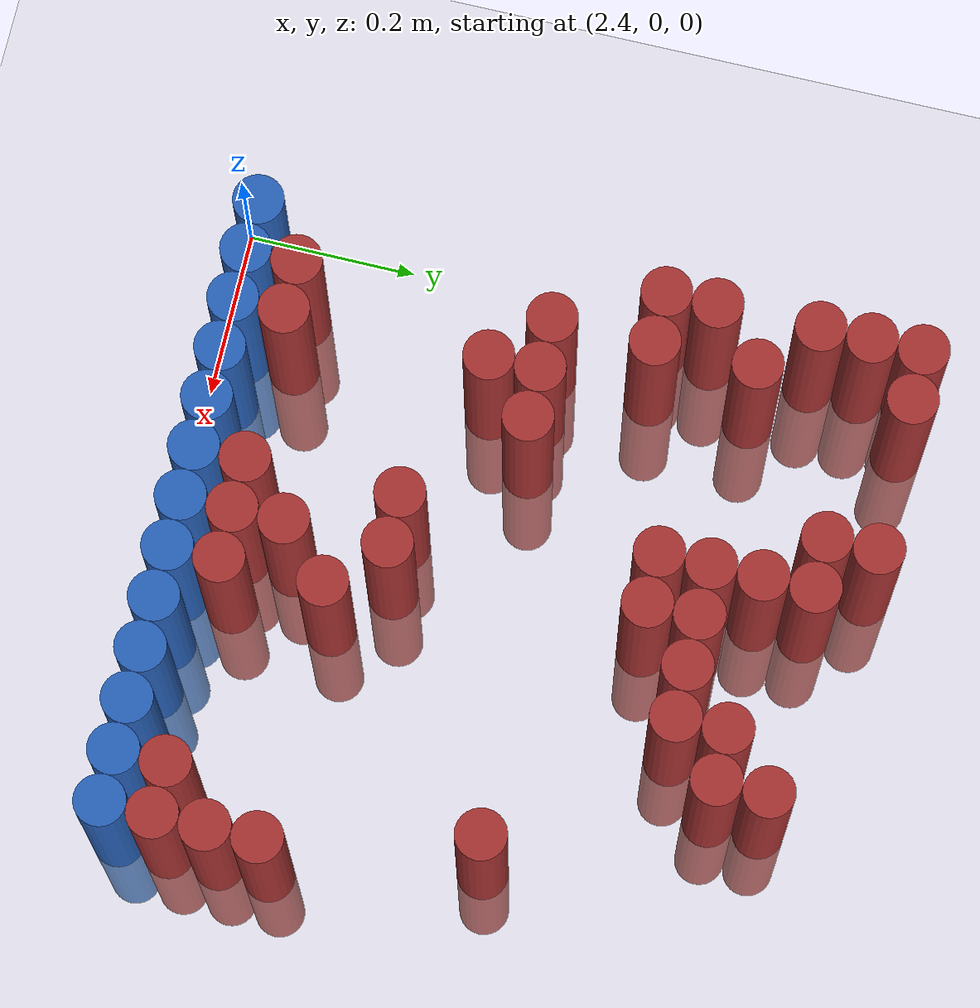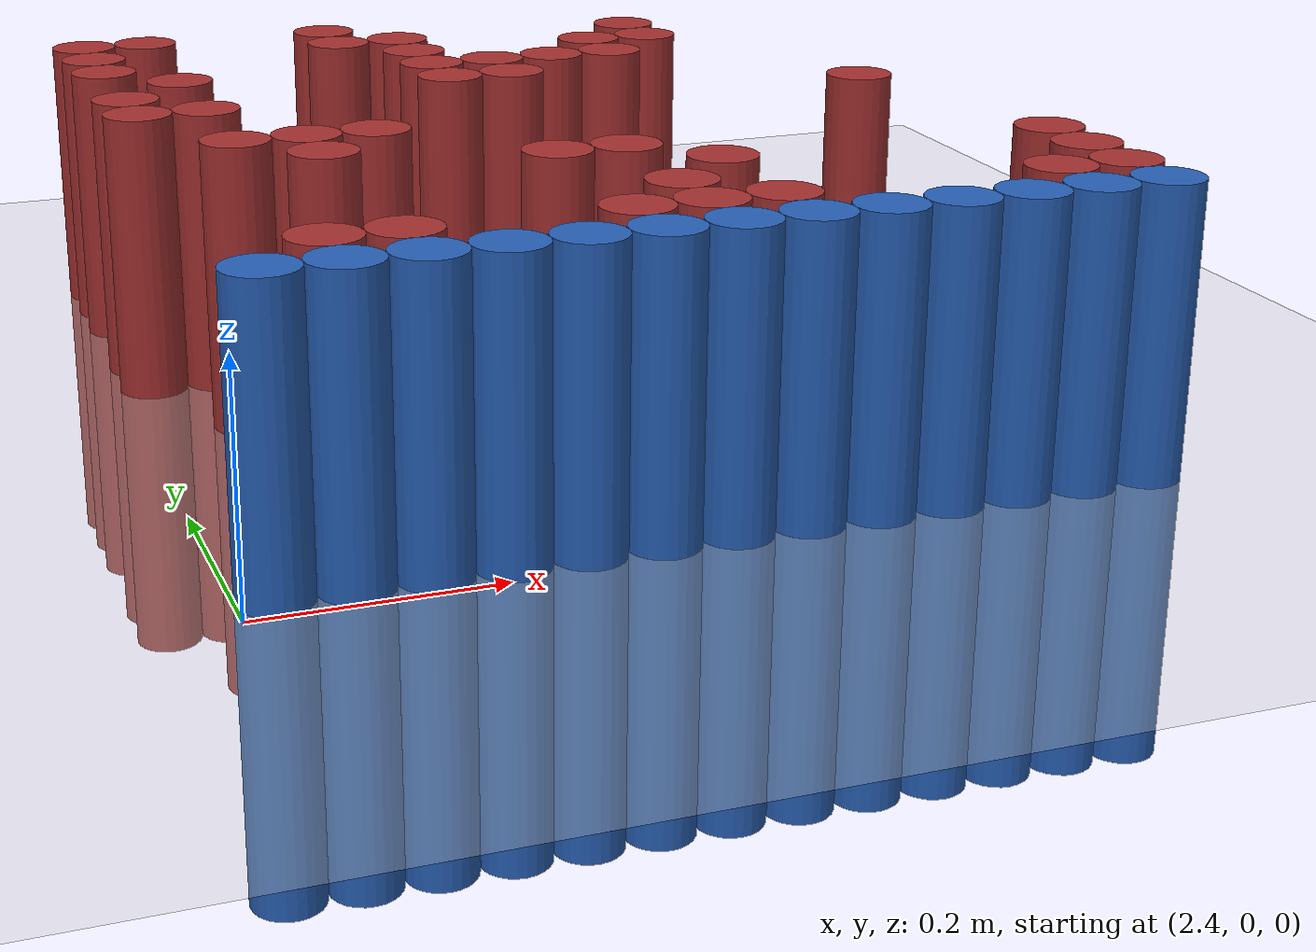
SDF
<sdf version="1.6">
 <world name="default">
  <model name="ground_plane">
   <static>1</static>
   <link name="link">
    <collision name="collision">
     <geometry><plane><normal>0 0 1</normal><size>100 100</size></plane></geometry>
     <surface><friction><ode><mu>100</mu><mu2>50</mu2></ode></friction></surface>
    </collision>
    <visual name="visual">
     <cast_shadows>0</cast_shadows>
     <geometry><plane><normal>0 0 1</normal><size>100 100</size></plane></geometry>
     <material>
      <script><uri>file://media/materials/scripts/gazebo.material</uri><name>Gazebo/Grey</name></script>
     </material>
    </visual>
   </link>
  </model>
  <model name="unit_cylinder_221">
   <static>1</static>
   <pose>2.430000 0.810000 0.000000 0.000000 0.000000 0.000000</pose>
   <link name="link">
    <inertial>
     <mass>1</mass>
     <inertia><ixx>0.145833</ixx><ixy>0</ixy><ixz>0</ixz><iyy>0.145833</iyy><iyz>0</iyz><izz>0.125</izz></inertia>
    </inertial>
    <collision name="collision">
     <geometry><cylinder><radius>0.030000</radius><length>0.5</length></cylinder></geometry>
    </collision>
    <visual name="visual">
     <geometry><cylinder><radius>0.030000</radius><length>0.5</length></cylinder></geometry>
     <material>
      <ambient>0.648000 0.192000 0.192000 1</ambient>
      <diffuse>0.648000 0.192000 0.192000 1</diffuse>
     </material>
     <material>
      <script><name>Gazebo/Grey</name><uri>file://media/materials/scripts/gazebo.material</uri></script>
     </material>
    </visual>
   </link>
  </model>
  <model name="unit_cylinder_222">
   <static>1</static>
   <pose>2.490000 0.810000 0.000000 0.000000 0.000000 0.000000</pose>
   <link name="link">
    <inertial>
     <mass>1</mass>
     <inertia><ixx>0.145833</ixx><ixy>0</ixy><ixz>0</ixz><iyy>0.145833</iyy><iyz>0</iyz><izz>0.125</izz></inertia>
    </inertial>
    <collision name="collision">
     <geometry><cylinder><radius>0.030000</radius><length>0.5</length></cylinder></geometry>
    </collision>
    <visual name="visual">
     <geometry><cylinder><radius>0.030000</radius><length>0.5</length></cylinder></geometry>
     <material>
      <ambient>0.648000 0.192000 0.192000 1</ambient>
      <diffuse>0.648000 0.192000 0.192000 1</diffuse>
     </material>
     <material>
      <script><name>Gazebo/Grey</name><uri>file://media/materials/scripts/gazebo.material</uri></script>
     </material>
    </visual>
   </link>
  </model>
  <model name="unit_cylinder_223">
   <static>1</static>
   <pose>2.670000 0.810000 0.000000 0.000000 0.000000 0.000000</pose>
   <link name="link">
    <inertial>
     <mass>1</mass>
     <inertia><ixx>0.145833</ixx><ixy>0</ixy><ixz>0</ixz><iyy>0.145833</iyy><iyz>0</iyz><izz>0.125</izz></inertia>
    </inertial>
    <collision name="collision">
     <geometry><cylinder><radius>0.030000</radius><length>0.5</length></cylinder></geometry>
    </collision>
    <visual name="visual">
     <geometry><cylinder><radius>0.030000</radius><length>0.5</length></cylinder></geometry>
     <material>
      <ambient>0.648000 0.192000 0.192000 1</ambient>
      <diffuse>0.648000 0.192000 0.192000 1</diffuse>
     </material>
     <material>
      <script><name>Gazebo/Grey</name><uri>file://media/materials/scripts/gazebo.material</uri></script>
     </material>
    </visual>
   </link>
  </model>
  <model name="unit_cylinder_233">
   <static>1</static>
   <pose>2.430000 0.750000 0.000000 0.000000 0.000000 0.000000</pose>
   <link name="link">
    <inertial>
     <mass>1</mass>
     <inertia><ixx>0.145833</ixx><ixy>0</ixy><ixz>0</ixz><iyy>0.145833</iyy><iyz>0</iyz><izz>0.125</izz></inertia>
    </inertial>
    <collision name="collision">
     <geometry><cylinder><radius>0.030000</radius><length>0.5</length></cylinder></geometry>
    </collision>
    <visual name="visual">
     <geometry><cylinder><radius>0.030000</radius><length>0.5</length></cylinder></geometry>
     <material>
      <ambient>0.648000 0.192000 0.192000 1</ambient>
      <diffuse>0.648000 0.192000 0.192000 1</diffuse>
     </material>
     <material>
      <script><name>Gazebo/Grey</name><uri>file://media/materials/scripts/gazebo.material</uri></script>
     </material>
    </visual>
   </link>
  </model>
  <model name="unit_cylinder_234">
   <static>1</static>
   <pose>2.670000 0.750000 0.000000 0.000000 0.000000 0.000000</pose>
   <link name="link">
    <inertial>
     <mass>1</mass>
     <inertia><ixx>0.145833</ixx><ixy>0</ixy><ixz>0</ixz><iyy>0.145833</iyy><iyz>0</iyz><izz>0.125</izz></inertia>
    </inertial>
    <collision name="collision">
     <geometry><cylinder><radius>0.030000</radius><length>0.5</length></cylinder></geometry>
    </collision>
    <visual name="visual">
     <geometry><cylinder><radius>0.030000</radius><length>0.5</length></cylinder></geometry>
     <material>
      <ambient>0.648000 0.192000 0.192000 1</ambient>
      <diffuse>0.648000 0.192000 0.192000 1</diffuse>
     </material>
     <material>
      <script><name>Gazebo/Grey</name><uri>file://media/materials/scripts/gazebo.material</uri></script>
     </material>
    </visual>
   </link>
  </model>
  <model name="unit_cylinder_235">
   <static>1</static>
   <pose>2.730000 0.750000 0.000000 0.000000 0.000000 0.000000</pose>
   <link name="link">
    <inertial>
     <mass>1</mass>
     <inertia><ixx>0.145833</ixx><ixy>0</ixy><ixz>0</ixz><iyy>0.145833</iyy><iyz>0</iyz><izz>0.125</izz></inertia>
    </inertial>
    <collision name="collision">
     <geometry><cylinder><radius>0.030000</radius><length>0.5</length></cylinder></geometry>
    </collision>
    <visual name="visual">
     <geometry><cylinder><radius>0.030000</radius><length>0.5</length></cylinder></geometry>
     <material>
      <ambient>0.648000 0.192000 0.192000 1</ambient>
      <diffuse>0.648000 0.192000 0.192000 1</diffuse>
     </material>
     <material>
      <script><name>Gazebo/Grey</name><uri>file://media/materials/scripts/gazebo.material</uri></script>
     </material>
    </visual>
   </link>
  </model>
  <model name="unit_cylinder_236">
   <static>1</static>
   <pose>2.970000 0.750000 0.000000 0.000000 0.000000 0.000000</pose>
   <link name="link">
    <inertial>
     <mass>1</mass>
     <inertia><ixx>0.145833</ixx><ixy>0</ixy><ixz>0</ixz><iyy>0.145833</iyy><iyz>0</iyz><izz>0.125</izz></inertia>
    </inertial>
    <collision name="collision">
     <geometry><cylinder><radius>0.030000</radius><length>0.5</length></cylinder></geometry>
    </collision>
    <visual name="visual">
     <geometry><cylinder><radius>0.030000</radius><length>0.5</length></cylinder></geometry>
     <material>
      <ambient>0.648000 0.192000 0.192000 1</ambient>
      <diffuse>0.648000 0.192000 0.192000 1</diffuse>
     </material>
     <material>
      <script><name>Gazebo/Grey</name><uri>file://media/materials/scripts/gazebo.material</uri></script>
     </material>
    </visual>
   </link>
  </model>
  <model name="unit_cylinder_247">
   <static>1</static>
   <pose>2.430000 0.690000 0.000000 0.000000 0.000000 0.000000</pose>
   <link name="link">
    <inertial>
     <mass>1</mass>
     <inertia><ixx>0.145833</ixx><ixy>0</ixy><ixz>0</ixz><iyy>0.145833</iyy><iyz>0</iyz><izz>0.125</izz></inertia>
    </inertial>
    <collision name="collision">
     <geometry><cylinder><radius>0.030000</radius><length>0.5</length></cylinder></geometry>
    </collision>
    <visual name="visual">
     <geometry><cylinder><radius>0.030000</radius><length>0.5</length></cylinder></geometry>
     <material>
      <ambient>0.648000 0.192000 0.192000 1</ambient>
      <diffuse>0.648000 0.192000 0.192000 1</diffuse>
     </material>
     <material>
      <script><name>Gazebo/Grey</name><uri>file://media/materials/scripts/gazebo.material</uri></script>
     </material>
    </visual>
   </link>
  </model>
  <model name="unit_cylinder_248">
   <static>1</static>
   <pose>2.730000 0.690000 0.000000 0.000000 0.000000 0.000000</pose>
   <link name="link">
    <inertial>
     <mass>1</mass>
     <inertia><ixx>0.145833</ixx><ixy>0</ixy><ixz>0</ixz><iyy>0.145833</iyy><iyz>0</iyz><izz>0.125</izz></inertia>
    </inertial>
    <collision name="collision">
     <geometry><cylinder><radius>0.030000</radius><length>0.5</length></cylinder></geometry>
    </collision>
    <visual name="visual">
     <geometry><cylinder><radius>0.030000</radius><length>0.5</length></cylinder></geometry>
     <material>
      <ambient>0.648000 0.192000 0.192000 1</ambient>
      <diffuse>0.648000 0.192000 0.192000 1</diffuse>
     </material>
     <material>
      <script><name>Gazebo/Grey</name><uri>file://media/materials/scripts/gazebo.material</uri></script>
     </material>
    </visual>
   </link>
  </model>
  <model name="unit_cylinder_249">
   <static>1</static>
   <pose>2.910000 0.690000 0.000000 0.000000 0.000000 0.000000</pose>
   <link name="link">
    <inertial>
     <mass>1</mass>
     <inertia><ixx>0.145833</ixx><ixy>0</ixy><ixz>0</ixz><iyy>0.145833</iyy><iyz>0</iyz><izz>0.125</izz></inertia>
    </inertial>
    <collision name="collision">
     <geometry><cylinder><radius>0.030000</radius><length>0.5</length></cylinder></geometry>
    </collision>
    <visual name="visual">
     <geometry><cylinder><radius>0.030000</radius><length>0.5</length></cylinder></geometry>
     <material>
      <ambient>0.648000 0.192000 0.192000 1</ambient>
      <diffuse>0.648000 0.192000 0.192000 1</diffuse>
     </material>
     <material>
      <script><name>Gazebo/Grey</name><uri>file://media/materials/scripts/gazebo.material</uri></script>
     </material>
    </visual>
   </link>
  </model>
  <model name="unit_cylinder_250">
   <static>1</static>
   <pose>2.970000 0.690000 0.000000 0.000000 0.000000 0.000000</pose>
   <link name="link">
    <inertial>
     <mass>1</mass>
     <inertia><ixx>0.145833</ixx><ixy>0</ixy><ixz>0</ixz><iyy>0.145833</iyy><iyz>0</iyz><izz>0.125</izz></inertia>
    </inertial>
    <collision name="collision">
     <geometry><cylinder><radius>0.030000</radius><length>0.5</length></cylinder></geometry>
    </collision>
    <visual name="visual">
     <geometry><cylinder><radius>0.030000</radius><length>0.5</length></cylinder></geometry>
     <material>
      <ambient>0.648000 0.192000 0.192000 1</ambient>
      <diffuse>0.648000 0.192000 0.192000 1</diffuse>
     </material>
     <material>
      <script><name>Gazebo/Grey</name><uri>file://media/materials/scripts/gazebo.material</uri></script>
     </material>
    </visual>
   </link>
  </model>
  <model name="unit_cylinder_256">
   <static>1</static>
   <pose>2.490000 0.630000 0.000000 0.000000 0.000000 0.000000</pose>
   <link name="link">
    <inertial>
     <mass>1</mass>
     <inertia><ixx>0.145833</ixx><ixy>0</ixy><ixz>0</ixz><iyy>0.145833</iyy><iyz>0</iyz><izz>0.125</izz></inertia>
    </inertial>
    <collision name="collision">
     <geometry><cylinder><radius>0.030000</radius><length>0.5</length></cylinder></geometry>
    </collision>
    <visual name="visual">
     <geometry><cylinder><radius>0.030000</radius><length>0.5</length></cylinder></geometry>
     <material>
      <ambient>0.648000 0.192000 0.192000 1</ambient>
      <diffuse>0.648000 0.192000 0.192000 1</diffuse>
     </material>
     <material>
      <script><name>Gazebo/Grey</name><uri>file://media/materials/scripts/gazebo.material</uri></script>
     </material>
    </visual>
   </link>
  </model>
  <model name="unit_cylinder_257">
   <static>1</static>
   <pose>2.730000 0.630000 0.000000 0.000000 0.000000 0.000000</pose>
   <link name="link">
    <inertial>
     <mass>1</mass>
     <inertia><ixx>0.145833</ixx><ixy>0</ixy><ixz>0</ixz><iyy>0.145833</iyy><iyz>0</iyz><izz>0.125</izz></inertia>
    </inertial>
    <collision name="collision">
     <geometry><cylinder><radius>0.030000</radius><length>0.5</length></cylinder></geometry>
    </collision>
    <visual name="visual">
     <geometry><cylinder><radius>0.030000</radius><length>0.5</length></cylinder></geometry>
     <material>
      <ambient>0.648000 0.192000 0.192000 1</ambient>
      <diffuse>0.648000 0.192000 0.192000 1</diffuse>
     </material>
     <material>
      <script><name>Gazebo/Grey</name><uri>file://media/materials/scripts/gazebo.material</uri></script>
     </material>
    </visual>
   </link>
  </model>
  <model name="unit_cylinder_258">
   <static>1</static>
   <pose>2.790000 0.630000 0.000000 0.000000 0.000000 0.000000</pose>
   <link name="link">
    <inertial>
     <mass>1</mass>
     <inertia><ixx>0.145833</ixx><ixy>0</ixy><ixz>0</ixz><iyy>0.145833</iyy><iyz>0</iyz><izz>0.125</izz></inertia>
    </inertial>
    <collision name="collision">
     <geometry><cylinder><radius>0.030000</radius><length>0.5</length></cylinder></geometry>
    </collision>
    <visual name="visual">
     <geometry><cylinder><radius>0.030000</radius><length>0.5</length></cylinder></geometry>
     <material>
      <ambient>0.648000 0.192000 0.192000 1</ambient>
      <diffuse>0.648000 0.192000 0.192000 1</diffuse>
     </material>
     <material>
      <script><name>Gazebo/Grey</name><uri>file://media/materials/scripts/gazebo.material</uri></script>
     </material>
    </visual>
   </link>
  </model>
  <model name="unit_cylinder_259">
   <static>1</static>
   <pose>2.850000 0.630000 0.000000 0.000000 0.000000 0.000000</pose>
   <link name="link">
    <inertial>
     <mass>1</mass>
     <inertia><ixx>0.145833</ixx><ixy>0</ixy><ixz>0</ixz><iyy>0.145833</iyy><iyz>0</iyz><izz>0.125</izz></inertia>
    </inertial>
    <collision name="collision">
     <geometry><cylinder><radius>0.030000</radius><length>0.5</length></cylinder></geometry>
    </collision>
    <visual name="visual">
     <geometry><cylinder><radius>0.030000</radius><length>0.5</length></cylinder></geometry>
     <material>
      <ambient>0.648000 0.192000 0.192000 1</ambient>
      <diffuse>0.648000 0.192000 0.192000 1</diffuse>
     </material>
     <material>
      <script><name>Gazebo/Grey</name><uri>file://media/materials/scripts/gazebo.material</uri></script>
     </material>
    </visual>
   </link>
  </model>
  <model name="unit_cylinder_260">
   <static>1</static>
   <pose>2.910000 0.630000 0.000000 0.000000 0.000000 0.000000</pose>
   <link name="link">
    <inertial>
     <mass>1</mass>
     <inertia><ixx>0.145833</ixx><ixy>0</ixy><ixz>0</ixz><iyy>0.145833</iyy><iyz>0</iyz><izz>0.125</izz></inertia>
    </inertial>
    <collision name="collision">
     <geometry><cylinder><radius>0.030000</radius><length>0.5</length></cylinder></geometry>
    </collision>
    <visual name="visual">
     <geometry><cylinder><radius>0.030000</radius><length>0.5</length></cylinder></geometry>
     <material>
      <ambient>0.648000 0.192000 0.192000 1</ambient>
      <diffuse>0.648000 0.192000 0.192000 1</diffuse>
     </material>
     <material>
      <script><name>Gazebo/Grey</name><uri>file://media/materials/scripts/gazebo.material</uri></script>
     </material>
    </visual>
   </link>
  </model>
  <model name="unit_cylinder_267">
   <static>1</static>
   <pose>2.430000 0.570000 0.000000 0.000000 0.000000 0.000000</pose>
   <link name="link">
    <inertial>
     <mass>1</mass>
     <inertia><ixx>0.145833</ixx><ixy>0</ixy><ixz>0</ixz><iyy>0.145833</iyy><iyz>0</iyz><izz>0.125</izz></inertia>
    </inertial>
    <collision name="collision">
     <geometry><cylinder><radius>0.030000</radius><length>0.5</length></cylinder></geometry>
    </collision>
    <visual name="visual">
     <geometry><cylinder><radius>0.030000</radius><length>0.5</length></cylinder></geometry>
     <material>
      <ambient>0.648000 0.192000 0.192000 1</ambient>
      <diffuse>0.648000 0.192000 0.192000 1</diffuse>
     </material>
     <material>
      <script><name>Gazebo/Grey</name><uri>file://media/materials/scripts/gazebo.material</uri></script>
     </material>
    </visual>
   </link>
  </model>
  <model name="unit_cylinder_268">
   <static>1</static>
   <pose>2.730000 0.570000 0.000000 0.000000 0.000000 0.000000</pose>
   <link name="link">
    <inertial>
     <mass>1</mass>
     <inertia><ixx>0.145833</ixx><ixy>0</ixy><ixz>0</ixz><iyy>0.145833</iyy><iyz>0</iyz><izz>0.125</izz></inertia>
    </inertial>
    <collision name="collision">
     <geometry><cylinder><radius>0.030000</radius><length>0.5</length></cylinder></geometry>
    </collision>
    <visual name="visual">
     <geometry><cylinder><radius>0.030000</radius><length>0.5</length></cylinder></geometry>
     <material>
      <ambient>0.648000 0.192000 0.192000 1</ambient>
      <diffuse>0.648000 0.192000 0.192000 1</diffuse>
     </material>
     <material>
      <script><name>Gazebo/Grey</name><uri>file://media/materials/scripts/gazebo.material</uri></script>
     </material>
    </visual>
   </link>
  </model>
  <model name="unit_cylinder_269">
   <static>1</static>
   <pose>2.790000 0.570000 0.000000 0.000000 0.000000 0.000000</pose>
   <link name="link">
    <inertial>
     <mass>1</mass>
     <inertia><ixx>0.145833</ixx><ixy>0</ixy><ixz>0</ixz><iyy>0.145833</iyy><iyz>0</iyz><izz>0.125</izz></inertia>
    </inertial>
    <collision name="collision">
     <geometry><cylinder><radius>0.030000</radius><length>0.5</length></cylinder></geometry>
    </collision>
    <visual name="visual">
     <geometry><cylinder><radius>0.030000</radius><length>0.5</length></cylinder></geometry>
     <material>
      <ambient>0.648000 0.192000 0.192000 1</ambient>
      <diffuse>0.648000 0.192000 0.192000 1</diffuse>
     </material>
     <material>
      <script><name>Gazebo/Grey</name><uri>file://media/materials/scripts/gazebo.material</uri></script>
     </material>
    </visual>
   </link>
  </model>
  <model name="unit_cylinder_276">
   <static>1</static>
   <pose>2.430000 0.510000 0.000000 0.000000 0.000000 0.000000</pose>
   <link name="link">
    <inertial>
     <mass>1</mass>
     <inertia><ixx>0.145833</ixx><ixy>0</ixy><ixz>0</ixz><iyy>0.145833</iyy><iyz>0</iyz><izz>0.125</izz></inertia>
    </inertial>
    <collision name="collision">
     <geometry><cylinder><radius>0.030000</radius><length>0.5</length></cylinder></geometry>
    </collision>
    <visual name="visual">
     <geometry><cylinder><radius>0.030000</radius><length>0.5</length></cylinder></geometry>
     <material>
      <ambient>0.648000 0.192000 0.192000 1</ambient>
      <diffuse>0.648000 0.192000 0.192000 1</diffuse>
     </material>
     <material>
      <script><name>Gazebo/Grey</name><uri>file://media/materials/scripts/gazebo.material</uri></script>
     </material>
    </visual>
   </link>
  </model>
  <model name="unit_cylinder_277">
   <static>1</static>
   <pose>2.490000 0.510000 0.000000 0.000000 0.000000 0.000000</pose>
   <link name="link">
    <inertial>
     <mass>1</mass>
     <inertia><ixx>0.145833</ixx><ixy>0</ixy><ixz>0</ixz><iyy>0.145833</iyy><iyz>0</iyz><izz>0.125</izz></inertia>
    </inertial>
    <collision name="collision">
     <geometry><cylinder><radius>0.030000</radius><length>0.5</length></cylinder></geometry>
    </collision>
    <visual name="visual">
     <geometry><cylinder><radius>0.030000</radius><length>0.5</length></cylinder></geometry>
     <material>
      <ambient>0.648000 0.192000 0.192000 1</ambient>
      <diffuse>0.648000 0.192000 0.192000 1</diffuse>
     </material>
     <material>
      <script><name>Gazebo/Grey</name><uri>file://media/materials/scripts/gazebo.material</uri></script>
     </material>
    </visual>
   </link>
  </model>
  <model name="unit_cylinder_283">
   <static>1</static>
   <pose>3.090000 0.450000 0.000000 0.000000 0.000000 0.000000</pose>
   <link name="link">
    <inertial>
     <mass>1</mass>
     <inertia><ixx>0.145833</ixx><ixy>0</ixy><ixz>0</ixz><iyy>0.145833</iyy><iyz>0</iyz><izz>0.125</izz></inertia>
    </inertial>
    <collision name="collision">
     <geometry><cylinder><radius>0.030000</radius><length>0.5</length></cylinder></geometry>
    </collision>
    <visual name="visual">
     <geometry><cylinder><radius>0.030000</radius><length>0.5</length></cylinder></geometry>
     <material>
      <ambient>0.648000 0.192000 0.192000 1</ambient>
      <diffuse>0.648000 0.192000 0.192000 1</diffuse>
     </material>
     <material>
      <script><name>Gazebo/Grey</name><uri>file://media/materials/scripts/gazebo.material</uri></script>
     </material>
    </visual>
   </link>
  </model>
  <model name="unit_cylinder_288">
   <static>1</static>
   <pose>2.490000 0.390000 0.000000 0.000000 0.000000 0.000000</pose>
   <link name="link">
    <inertial>
     <mass>1</mass>
     <inertia><ixx>0.145833</ixx><ixy>0</ixy><ixz>0</ixz><iyy>0.145833</iyy><iyz>0</iyz><izz>0.125</izz></inertia>
    </inertial>
    <collision name="collision">
     <geometry><cylinder><radius>0.030000</radius><length>0.5</length></cylinder></geometry>
    </collision>
    <visual name="visual">
     <geometry><cylinder><radius>0.030000</radius><length>0.5</length></cylinder></geometry>
     <material>
      <ambient>0.648000 0.192000 0.192000 1</ambient>
      <diffuse>0.648000 0.192000 0.192000 1</diffuse>
     </material>
     <material>
      <script><name>Gazebo/Grey</name><uri>file://media/materials/scripts/gazebo.material</uri></script>
     </material>
    </visual>
   </link>
  </model>
  <model name="unit_cylinder_289">
   <static>1</static>
   <pose>2.550000 0.390000 0.000000 0.000000 0.000000 0.000000</pose>
   <link name="link">
    <inertial>
     <mass>1</mass>
     <inertia><ixx>0.145833</ixx><ixy>0</ixy><ixz>0</ixz><iyy>0.145833</iyy><iyz>0</iyz><izz>0.125</izz></inertia>
    </inertial>
    <collision name="collision">
     <geometry><cylinder><radius>0.030000</radius><length>0.5</length></cylinder></geometry>
    </collision>
    <visual name="visual">
     <geometry><cylinder><radius>0.030000</radius><length>0.5</length></cylinder></geometry>
     <material>
      <ambient>0.648000 0.192000 0.192000 1</ambient>
      <diffuse>0.648000 0.192000 0.192000 1</diffuse>
     </material>
     <material>
      <script><name>Gazebo/Grey</name><uri>file://media/materials/scripts/gazebo.material</uri></script>
     </material>
    </visual>
   </link>
  </model>
  <model name="unit_cylinder_290">
   <static>1</static>
   <pose>2.610000 0.390000 0.000000 0.000000 0.000000 0.000000</pose>
   <link name="link">
    <inertial>
     <mass>1</mass>
     <inertia><ixx>0.145833</ixx><ixy>0</ixy><ixz>0</ixz><iyy>0.145833</iyy><iyz>0</iyz><izz>0.125</izz></inertia>
    </inertial>
    <collision name="collision">
     <geometry><cylinder><radius>0.030000</radius><length>0.5</length></cylinder></geometry>
    </collision>
    <visual name="visual">
     <geometry><cylinder><radius>0.030000</radius><length>0.5</length></cylinder></geometry>
     <material>
      <ambient>0.648000 0.192000 0.192000 1</ambient>
      <diffuse>0.648000 0.192000 0.192000 1</diffuse>
     </material>
     <material>
      <script><name>Gazebo/Grey</name><uri>file://media/materials/scripts/gazebo.material</uri></script>
     </material>
    </visual>
   </link>
  </model>
  <model name="unit_cylinder_294">
   <static>1</static>
   <pose>2.550000 0.330000 0.000000 0.000000 0.000000 0.000000</pose>
   <link name="link">
    <inertial>
     <mass>1</mass>
     <inertia><ixx>0.145833</ixx><ixy>0</ixy><ixz>0</ixz><iyy>0.145833</iyy><iyz>0</iyz><izz>0.125</izz></inertia>
    </inertial>
    <collision name="collision">
     <geometry><cylinder><radius>0.030000</radius><length>0.5</length></cylinder></geometry>
    </collision>
    <visual name="visual">
     <geometry><cylinder><radius>0.030000</radius><length>0.5</length></cylinder></geometry>
     <material>
      <ambient>0.648000 0.192000 0.192000 1</ambient>
      <diffuse>0.648000 0.192000 0.192000 1</diffuse>
     </material>
     <material>
      <script><name>Gazebo/Grey</name><uri>file://media/materials/scripts/gazebo.material</uri></script>
     </material>
    </visual>
   </link>
  </model>
  <model name="unit_cylinder_298">
   <static>1</static>
   <pose>2.730000 0.270000 0.000000 0.000000 0.000000 0.000000</pose>
   <link name="link">
    <inertial>
     <mass>1</mass>
     <inertia><ixx>0.145833</ixx><ixy>0</ixy><ixz>0</ixz><iyy>0.145833</iyy><iyz>0</iyz><izz>0.125</izz></inertia>
    </inertial>
    <collision name="collision">
     <geometry><cylinder><radius>0.030000</radius><length>0.5</length></cylinder></geometry>
    </collision>
    <visual name="visual">
     <geometry><cylinder><radius>0.030000</radius><length>0.5</length></cylinder></geometry>
     <material>
      <ambient>0.648000 0.192000 0.192000 1</ambient>
      <diffuse>0.648000 0.192000 0.192000 1</diffuse>
     </material>
     <material>
      <script><name>Gazebo/Grey</name><uri>file://media/materials/scripts/gazebo.material</uri></script>
     </material>
    </visual>
   </link>
  </model>
  <model name="unit_cylinder_299">
   <static>1</static>
   <pose>2.790000 0.270000 0.000000 0.000000 0.000000 0.000000</pose>
   <link name="link">
    <inertial>
     <mass>1</mass>
     <inertia><ixx>0.145833</ixx><ixy>0</ixy><ixz>0</ixz><iyy>0.145833</iyy><iyz>0</iyz><izz>0.125</izz></inertia>
    </inertial>
    <collision name="collision">
     <geometry><cylinder><radius>0.030000</radius><length>0.5</length></cylinder></geometry>
    </collision>
    <visual name="visual">
     <geometry><cylinder><radius>0.030000</radius><length>0.5</length></cylinder></geometry>
     <material>
      <ambient>0.648000 0.192000 0.192000 1</ambient>
      <diffuse>0.648000 0.192000 0.192000 1</diffuse>
     </material>
     <material>
      <script><name>Gazebo/Grey</name><uri>file://media/materials/scripts/gazebo.material</uri></script>
     </material>
    </visual>
   </link>
  </model>
  <model name="unit_cylinder_303">
   <static>1</static>
   <pose>2.850000 0.210000 0.000000 0.000000 0.000000 0.000000</pose>
   <link name="link">
    <inertial>
     <mass>1</mass>
     <inertia><ixx>0.145833</ixx><ixy>0</ixy><ixz>0</ixz><iyy>0.145833</iyy><iyz>0</iyz><izz>0.125</izz></inertia>
    </inertial>
    <collision name="collision">
     <geometry><cylinder><radius>0.030000</radius><length>0.5</length></cylinder></geometry>
    </collision>
    <visual name="visual">
     <geometry><cylinder><radius>0.030000</radius><length>0.5</length></cylinder></geometry>
     <material>
      <ambient>0.648000 0.192000 0.192000 1</ambient>
      <diffuse>0.648000 0.192000 0.192000 1</diffuse>
     </material>
     <material>
      <script><name>Gazebo/Grey</name><uri>file://media/materials/scripts/gazebo.material</uri></script>
     </material>
    </visual>
   </link>
  </model>
  <model name="unit_cylinder_304">
   <static>1</static>
   <pose>3.150000 0.210000 0.000000 0.000000 0.000000 0.000000</pose>
   <link name="link">
    <inertial>
     <mass>1</mass>
     <inertia><ixx>0.145833</ixx><ixy>0</ixy><ixz>0</ixz><iyy>0.145833</iyy><iyz>0</iyz><izz>0.125</izz></inertia>
    </inertial>
    <collision name="collision">
     <geometry><cylinder><radius>0.030000</radius><length>0.5</length></cylinder></geometry>
    </collision>
    <visual name="visual">
     <geometry><cylinder><radius>0.030000</radius><length>0.5</length></cylinder></geometry>
     <material>
      <ambient>0.648000 0.192000 0.192000 1</ambient>
      <diffuse>0.648000 0.192000 0.192000 1</diffuse>
     </material>
     <material>
      <script><name>Gazebo/Grey</name><uri>file://media/materials/scripts/gazebo.material</uri></script>
     </material>
    </visual>
   </link>
  </model>
  <model name="unit_cylinder_309">
   <static>1</static>
   <pose>2.790000 0.150000 0.000000 0.000000 0.000000 0.000000</pose>
   <link name="link">
    <inertial>
     <mass>1</mass>
     <inertia><ixx>0.145833</ixx><ixy>0</ixy><ixz>0</ixz><iyy>0.145833</iyy><iyz>0</iyz><izz>0.125</izz></inertia>
    </inertial>
    <collision name="collision">
     <geometry><cylinder><radius>0.030000</radius><length>0.5</length></cylinder></geometry>
    </collision>
    <visual name="visual">
     <geometry><cylinder><radius>0.030000</radius><length>0.5</length></cylinder></geometry>
     <material>
      <ambient>0.648000 0.192000 0.192000 1</ambient>
      <diffuse>0.648000 0.192000 0.192000 1</diffuse>
     </material>
     <material>
      <script><name>Gazebo/Grey</name><uri>file://media/materials/scripts/gazebo.material</uri></script>
     </material>
    </visual>
   </link>
  </model>
  <model name="unit_cylinder_310">
   <static>1</static>
   <pose>3.150000 0.150000 0.000000 0.000000 0.000000 0.000000</pose>
   <link name="link">
    <inertial>
     <mass>1</mass>
     <inertia><ixx>0.145833</ixx><ixy>0</ixy><ixz>0</ixz><iyy>0.145833</iyy><iyz>0</iyz><izz>0.125</izz></inertia>
    </inertial>
    <collision name="collision">
     <geometry><cylinder><radius>0.030000</radius><length>0.5</length></cylinder></geometry>
    </collision>
    <visual name="visual">
     <geometry><cylinder><radius>0.030000</radius><length>0.5</length></cylinder></geometry>
     <material>
      <ambient>0.648000 0.192000 0.192000 1</ambient>
      <diffuse>0.648000 0.192000 0.192000 1</diffuse>
     </material>
     <material>
      <script><name>Gazebo/Grey</name><uri>file://media/materials/scripts/gazebo.material</uri></script>
     </material>
    </visual>
   </link>
  </model>
  <model name="unit_cylinder_318">
   <static>1</static>
   <pose>2.490000 0.090000 0.000000 0.000000 0.000000 0.000000</pose>
   <link name="link">
    <inertial>
     <mass>1</mass>
     <inertia><ixx>0.145833</ixx><ixy>0</ixy><ixz>0</ixz><iyy>0.145833</iyy><iyz>0</iyz><izz>0.125</izz></inertia>
    </inertial>
    <collision name="collision">
     <geometry><cylinder><radius>0.030000</radius><length>0.5</length></cylinder></geometry>
    </collision>
    <visual name="visual">
     <geometry><cylinder><radius>0.030000</radius><length>0.5</length></cylinder></geometry>
     <material>
      <ambient>0.648000 0.192000 0.192000 1</ambient>
      <diffuse>0.648000 0.192000 0.192000 1</diffuse>
     </material>
     <material>
      <script><name>Gazebo/Grey</name><uri>file://media/materials/scripts/gazebo.material</uri></script>
     </material>
    </visual>
   </link>
  </model>
  <model name="unit_cylinder_319">
   <static>1</static>
   <pose>2.550000 0.090000 0.000000 0.000000 0.000000 0.000000</pose>
   <link name="link">
    <inertial>
     <mass>1</mass>
     <inertia><ixx>0.145833</ixx><ixy>0</ixy><ixz>0</ixz><iyy>0.145833</iyy><iyz>0</iyz><izz>0.125</izz></inertia>
    </inertial>
    <collision name="collision">
     <geometry><cylinder><radius>0.030000</radius><length>0.5</length></cylinder></geometry>
    </collision>
    <visual name="visual">
     <geometry><cylinder><radius>0.030000</radius><length>0.5</length></cylinder></geometry>
     <material>
      <ambient>0.648000 0.192000 0.192000 1</ambient>
      <diffuse>0.648000 0.192000 0.192000 1</diffuse>
     </material>
     <material>
      <script><name>Gazebo/Grey</name><uri>file://media/materials/scripts/gazebo.material</uri></script>
     </material>
    </visual>
   </link>
  </model>
  <model name="unit_cylinder_320">
   <static>1</static>
   <pose>2.730000 0.090000 0.000000 0.000000 0.000000 0.000000</pose>
   <link name="link">
    <inertial>
     <mass>1</mass>
     <inertia><ixx>0.145833</ixx><ixy>0</ixy><ixz>0</ixz><iyy>0.145833</iyy><iyz>0</iyz><izz>0.125</izz></inertia>
    </inertial>
    <collision name="collision">
     <geometry><cylinder><radius>0.030000</radius><length>0.5</length></cylinder></geometry>
    </collision>
    <visual name="visual">
     <geometry><cylinder><radius>0.030000</radius><length>0.5</length></cylinder></geometry>
     <material>
      <ambient>0.648000 0.192000 0.192000 1</ambient>
      <diffuse>0.648000 0.192000 0.192000 1</diffuse>
     </material>
     <material>
      <script><name>Gazebo/Grey</name><uri>file://media/materials/scripts/gazebo.material</uri></script>
     </material>
    </visual>
   </link>
  </model>
  <model name="unit_cylinder_321">
   <static>1</static>
   <pose>2.790000 0.090000 0.000000 0.000000 0.000000 0.000000</pose>
   <link name="link">
    <inertial>
     <mass>1</mass>
     <inertia><ixx>0.145833</ixx><ixy>0</ixy><ixz>0</ixz><iyy>0.145833</iyy><iyz>0</iyz><izz>0.125</izz></inertia>
    </inertial>
    <collision name="collision">
     <geometry><cylinder><radius>0.030000</radius><length>0.5</length></cylinder></geometry>
    </collision>
    <visual name="visual">
     <geometry><cylinder><radius>0.030000</radius><length>0.5</length></cylinder></geometry>
     <material>
      <ambient>0.648000 0.192000 0.192000 1</ambient>
      <diffuse>0.648000 0.192000 0.192000 1</diffuse>
     </material>
     <material>
      <script><name>Gazebo/Grey</name><uri>file://media/materials/scripts/gazebo.material</uri></script>
     </material>
    </visual>
   </link>
  </model>
  <model name="unit_cylinder_322">
   <static>1</static>
   <pose>2.850000 0.090000 0.000000 0.000000 0.000000 0.000000</pose>
   <link name="link">
    <inertial>
     <mass>1</mass>
     <inertia><ixx>0.145833</ixx><ixy>0</ixy><ixz>0</ixz><iyy>0.145833</iyy><iyz>0</iyz><izz>0.125</izz></inertia>
    </inertial>
    <collision name="collision">
     <geometry><cylinder><radius>0.030000</radius><length>0.5</length></cylinder></geometry>
    </collision>
    <visual name="visual">
     <geometry><cylinder><radius>0.030000</radius><length>0.5</length></cylinder></geometry>
     <material>
      <ambient>0.648000 0.192000 0.192000 1</ambient>
      <diffuse>0.648000 0.192000 0.192000 1</diffuse>
     </material>
     <material>
      <script><name>Gazebo/Grey</name><uri>file://media/materials/scripts/gazebo.material</uri></script>
     </material>
    </visual>
   </link>
  </model>
  <model name="unit_cylinder_323">
   <static>1</static>
   <pose>3.090000 0.090000 0.000000 0.000000 0.000000 0.000000</pose>
   <link name="link">
    <inertial>
     <mass>1</mass>
     <inertia><ixx>0.145833</ixx><ixy>0</ixy><ixz>0</ixz><iyy>0.145833</iyy><iyz>0</iyz><izz>0.125</izz></inertia>
    </inertial>
    <collision name="collision">
     <geometry><cylinder><radius>0.030000</radius><length>0.5</length></cylinder></geometry>
    </collision>
    <visual name="visual">
     <geometry><cylinder><radius>0.030000</radius><length>0.5</length></cylinder></geometry>
     <material>
      <ambient>0.648000 0.192000 0.192000 1</ambient>
      <diffuse>0.648000 0.192000 0.192000 1</diffuse>
     </material>
     <material>
      <script><name>Gazebo/Grey</name><uri>file://media/materials/scripts/gazebo.material</uri></script>
     </material>
    </visual>
   </link>
  </model>
  <model name="unit_cylinder_324">
   <static>1</static>
   <pose>3.150000 0.090000 0.000000 0.000000 0.000000 0.000000</pose>
   <link name="link">
    <inertial>
     <mass>1</mass>
     <inertia><ixx>0.145833</ixx><ixy>0</ixy><ixz>0</ixz><iyy>0.145833</iyy><iyz>0</iyz><izz>0.125</izz></inertia>
    </inertial>
    <collision name="collision">
     <geometry><cylinder><radius>0.030000</radius><length>0.5</length></cylinder></geometry>
    </collision>
    <visual name="visual">
     <geometry><cylinder><radius>0.030000</radius><length>0.5</length></cylinder></geometry>
     <material>
      <ambient>0.648000 0.192000 0.192000 1</ambient>
      <diffuse>0.648000 0.192000 0.192000 1</diffuse>
     </material>
     <material>
      <script><name>Gazebo/Grey</name><uri>file://media/materials/scripts/gazebo.material</uri></script>
     </material>
    </visual>
   </link>
  </model>
  <model name="unit_cylinder_340">
   <static>1</static>
   <pose>2.430000 0.030000 0.000000 0.000000 0.000000 0.000000</pose>
   <link name="link">
    <inertial>
     <mass>1</mass>
     <inertia><ixx>0.145833</ixx><ixy>0</ixy><ixz>0</ixz><iyy>0.145833</iyy><iyz>0</iyz><izz>0.125</izz></inertia>
    </inertial>
    <collision name="collision">
     <geometry><cylinder><radius>0.030000</radius><length>0.5</length></cylinder></geometry>
    </collision>
    <visual name="visual">
     <geometry><cylinder><radius>0.030000</radius><length>0.5</length></cylinder></geometry>
     <material>
      <ambient>0.152000 0.379000 0.720000 1</ambient>
      <diffuse>0.152000 0.379000 0.720000 1</diffuse>
     </material>
     <material>
      <script><name>Gazebo/Grey</name><uri>file://media/materials/scripts/gazebo.material</uri></script>
     </material>
    </visual>
   </link>
  </model>
  <model name="unit_cylinder_341">
   <static>1</static>
   <pose>2.490000 0.030000 0.000000 0.000000 0.000000 0.000000</pose>
   <link name="link">
    <inertial>
     <mass>1</mass>
     <inertia><ixx>0.145833</ixx><ixy>0</ixy><ixz>0</ixz><iyy>0.145833</iyy><iyz>0</iyz><izz>0.125</izz></inertia>
    </inertial>
    <collision name="collision">
     <geometry><cylinder><radius>0.030000</radius><length>0.5</length></cylinder></geometry>
    </collision>
    <visual name="visual">
     <geometry><cylinder><radius>0.030000</radius><length>0.5</length></cylinder></geometry>
     <material>
      <ambient>0.152000 0.379000 0.720000 1</ambient>
      <diffuse>0.152000 0.379000 0.720000 1</diffuse>
     </material>
     <material>
      <script><name>Gazebo/Grey</name><uri>file://media/materials/scripts/gazebo.material</uri></script>
     </material>
    </visual>
   </link>
  </model>
  <model name="unit_cylinder_342">
   <static>1</static>
   <pose>2.550000 0.030000 0.000000 0.000000 0.000000 0.000000</pose>
   <link name="link">
    <inertial>
     <mass>1</mass>
     <inertia><ixx>0.145833</ixx><ixy>0</ixy><ixz>0</ixz><iyy>0.145833</iyy><iyz>0</iyz><izz>0.125</izz></inertia>
    </inertial>
    <collision name="collision">
     <geometry><cylinder><radius>0.030000</radius><length>0.5</length></cylinder></geometry>
    </collision>
    <visual name="visual">
     <geometry><cylinder><radius>0.030000</radius><length>0.5</length></cylinder></geometry>
     <material>
      <ambient>0.152000 0.379000 0.720000 1</ambient>
      <diffuse>0.152000 0.379000 0.720000 1</diffuse>
     </material>
     <material>
      <script><name>Gazebo/Grey</name><uri>file://media/materials/scripts/gazebo.material</uri></script>
     </material>
    </visual>
   </link>
  </model>
  <model name="unit_cylinder_343">
   <static>1</static>
   <pose>2.610000 0.030000 0.000000 0.000000 0.000000 0.000000</pose>
   <link name="link">
    <inertial>
     <mass>1</mass>
     <inertia><ixx>0.145833</ixx><ixy>0</ixy><ixz>0</ixz><iyy>0.145833</iyy><iyz>0</iyz><izz>0.125</izz></inertia>
    </inertial>
    <collision name="collision">
     <geometry><cylinder><radius>0.030000</radius><length>0.5</length></cylinder></geometry>
    </collision>
    <visual name="visual">
     <geometry><cylinder><radius>0.030000</radius><length>0.5</length></cylinder></geometry>
     <material>
      <ambient>0.152000 0.379000 0.720000 1</ambient>
      <diffuse>0.152000 0.379000 0.720000 1</diffuse>
     </material>
     <material>
      <script><name>Gazebo/Grey</name><uri>file://media/materials/scripts/gazebo.material</uri></script>
     </material>
    </visual>
   </link>
  </model>
  <model name="unit_cylinder_344">
   <static>1</static>
   <pose>2.670000 0.030000 0.000000 0.000000 0.000000 0.000000</pose>
   <link name="link">
    <inertial>
     <mass>1</mass>
     <inertia><ixx>0.145833</ixx><ixy>0</ixy><ixz>0</ixz><iyy>0.145833</iyy><iyz>0</iyz><izz>0.125</izz></inertia>
    </inertial>
    <collision name="collision">
     <geometry><cylinder><radius>0.030000</radius><length>0.5</length></cylinder></geometry>
    </collision>
    <visual name="visual">
     <geometry><cylinder><radius>0.030000</radius><length>0.5</length></cylinder></geometry>
     <material>
      <ambient>0.152000 0.379000 0.720000 1</ambient>
      <diffuse>0.152000 0.379000 0.720000 1</diffuse>
     </material>
     <material>
      <script><name>Gazebo/Grey</name><uri>file://media/materials/scripts/gazebo.material</uri></script>
     </material>
    </visual>
   </link>
  </model>
  <model name="unit_cylinder_345">
   <static>1</static>
   <pose>2.730000 0.030000 0.000000 0.000000 0.000000 0.000000</pose>
   <link name="link">
    <inertial>
     <mass>1</mass>
     <inertia><ixx>0.145833</ixx><ixy>0</ixy><ixz>0</ixz><iyy>0.145833</iyy><iyz>0</iyz><izz>0.125</izz></inertia>
    </inertial>
    <collision name="collision">
     <geometry><cylinder><radius>0.030000</radius><length>0.5</length></cylinder></geometry>
    </collision>
    <visual name="visual">
     <geometry><cylinder><radius>0.030000</radius><length>0.5</length></cylinder></geometry>
     <material>
      <ambient>0.152000 0.379000 0.720000 1</ambient>
      <diffuse>0.152000 0.379000 0.720000 1</diffuse>
     </material>
     <material>
      <script><name>Gazebo/Grey</name><uri>file://media/materials/scripts/gazebo.material</uri></script>
     </material>
    </visual>
   </link>
  </model>
  <model name="unit_cylinder_346">
   <static>1</static>
   <pose>2.790000 0.030000 0.000000 0.000000 0.000000 0.000000</pose>
   <link name="link">
    <inertial>
     <mass>1</mass>
     <inertia><ixx>0.145833</ixx><ixy>0</ixy><ixz>0</ixz><iyy>0.145833</iyy><iyz>0</iyz><izz>0.125</izz></inertia>
    </inertial>
    <collision name="collision">
     <geometry><cylinder><radius>0.030000</radius><length>0.5</length></cylinder></geometry>
    </collision>
    <visual name="visual">
     <geometry><cylinder><radius>0.030000</radius><length>0.5</length></cylinder></geometry>
     <material>
      <ambient>0.152000 0.379000 0.720000 1</ambient>
      <diffuse>0.152000 0.379000 0.720000 1</diffuse>
     </material>
     <material>
      <script><name>Gazebo/Grey</name><uri>file://media/materials/scripts/gazebo.material</uri></script>
     </material>
    </visual>
   </link>
  </model>
  <model name="unit_cylinder_347">
   <static>1</static>
   <pose>2.850000 0.030000 0.000000 0.000000 0.000000 0.000000</pose>
   <link name="link">
    <inertial>
     <mass>1</mass>
     <inertia><ixx>0.145833</ixx><ixy>0</ixy><ixz>0</ixz><iyy>0.145833</iyy><iyz>0</iyz><izz>0.125</izz></inertia>
    </inertial>
    <collision name="collision">
     <geometry><cylinder><radius>0.030000</radius><length>0.5</length></cylinder></geometry>
    </collision>
    <visual name="visual">
     <geometry><cylinder><radius>0.030000</radius><length>0.5</length></cylinder></geometry>
     <material>
      <ambient>0.152000 0.379000 0.720000 1</ambient>
      <diffuse>0.152000 0.379000 0.720000 1</diffuse>
     </material>
     <material>
      <script><name>Gazebo/Grey</name><uri>file://media/materials/scripts/gazebo.material</uri></script>
     </material>
    </visual>
   </link>
  </model>
  <model name="unit_cylinder_348">
   <static>1</static>
   <pose>2.910000 0.030000 0.000000 0.000000 0.000000 0.000000</pose>
   <link name="link">
    <inertial>
     <mass>1</mass>
     <inertia><ixx>0.145833</ixx><ixy>0</ixy><ixz>0</ixz><iyy>0.145833</iyy><iyz>0</iyz><izz>0.125</izz></inertia>
    </inertial>
    <collision name="collision">
     <geometry><cylinder><radius>0.030000</radius><length>0.5</length></cylinder></geometry>
    </collision>
    <visual name="visual">
     <geometry><cylinder><radius>0.030000</radius><length>0.5</length></cylinder></geometry>
     <material>
      <ambient>0.152000 0.379000 0.720000 1</ambient>
      <diffuse>0.152000 0.379000 0.720000 1</diffuse>
     </material>
     <material>
      <script><name>Gazebo/Grey</name><uri>file://media/materials/scripts/gazebo.material</uri></script>
     </material>
    </visual>
   </link>
  </model>
  <model name="unit_cylinder_349">
   <static>1</static>
   <pose>2.970000 0.030000 0.000000 0.000000 0.000000 0.000000</pose>
   <link name="link">
    <inertial>
     <mass>1</mass>
     <inertia><ixx>0.145833</ixx><ixy>0</ixy><ixz>0</ixz><iyy>0.145833</iyy><iyz>0</iyz><izz>0.125</izz></inertia>
    </inertial>
    <collision name="collision">
     <geometry><cylinder><radius>0.030000</radius><length>0.5</length></cylinder></geometry>
    </collision>
    <visual name="visual">
     <geometry><cylinder><radius>0.030000</radius><length>0.5</length></cylinder></geometry>
     <material>
      <ambient>0.152000 0.379000 0.720000 1</ambient>
      <diffuse>0.152000 0.379000 0.720000 1</diffuse>
     </material>
     <material>
      <script><name>Gazebo/Grey</name><uri>file://media/materials/scripts/gazebo.material</uri></script>
     </material>
    </visual>
   </link>
  </model>
  <model name="unit_cylinder_350">
   <static>1</static>
   <pose>3.030000 0.030000 0.000000 0.000000 0.000000 0.000000</pose>
   <link name="link">
    <inertial>
     <mass>1</mass>
     <inertia><ixx>0.145833</ixx><ixy>0</ixy><ixz>0</ixz><iyy>0.145833</iyy><iyz>0</iyz><izz>0.125</izz></inertia>
    </inertial>
    <collision name="collision">
     <geometry><cylinder><radius>0.030000</radius><length>0.5</length></cylinder></geometry>
    </collision>
    <visual name="visual">
     <geometry><cylinder><radius>0.030000</radius><length>0.5</length></cylinder></geometry>
     <material>
      <ambient>0.152000 0.379000 0.720000 1</ambient>
      <diffuse>0.152000 0.379000 0.720000 1</diffuse>
     </material>
     <material>
      <script><name>Gazebo/Grey</name><uri>file://media/materials/scripts/gazebo.material</uri></script>
     </material>
    </visual>
   </link>
  </model>
  <model name="unit_cylinder_351">
   <static>1</static>
   <pose>3.090000 0.030000 0.000000 0.000000 0.000000 0.000000</pose>
   <link name="link">
    <inertial>
     <mass>1</mass>
     <inertia><ixx>0.145833</ixx><ixy>0</ixy><ixz>0</ixz><iyy>0.145833</iyy><iyz>0</iyz><izz>0.125</izz></inertia>
    </inertial>
    <collision name="collision">
     <geometry><cylinder><radius>0.030000</radius><length>0.5</length></cylinder></geometry>
    </collision>
    <visual name="visual">
     <geometry><cylinder><radius>0.030000</radius><length>0.5</length></cylinder></geometry>
     <material>
      <ambient>0.152000 0.379000 0.720000 1</ambient>
      <diffuse>0.152000 0.379000 0.720000 1</diffuse>
     </material>
     <material>
      <script><name>Gazebo/Grey</name><uri>file://media/materials/scripts/gazebo.material</uri></script>
     </material>
    </visual>
   </link>
  </model>
  <model name="unit_cylinder_352">
   <static>1</static>
   <pose>3.150000 0.030000 0.000000 0.000000 0.000000 0.000000</pose>
   <link name="link">
    <inertial>
     <mass>1</mass>
     <inertia><ixx>0.145833</ixx><ixy>0</ixy><ixz>0</ixz><iyy>0.145833</iyy><iyz>0</iyz><izz>0.125</izz></inertia>
    </inertial>
    <collision name="collision">
     <geometry><cylinder><radius>0.030000</radius><length>0.5</length></cylinder></geometry>
    </collision>
    <visual name="visual">
     <geometry><cylinder><radius>0.030000</radius><length>0.5</length></cylinder></geometry>
     <material>
      <ambient>0.152000 0.379000 0.720000 1</ambient>
      <diffuse>0.152000 0.379000 0.720000 1</diffuse>
     </material>
     <material>
      <script><name>Gazebo/Grey</name><uri>file://media/materials/scripts/gazebo.material</uri></script>
     </material>
    </visual>
   </link>
  </model>
 </world>
</sdf>
